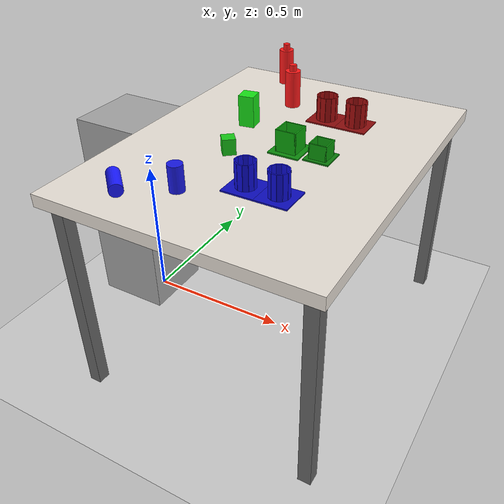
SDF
<?xml version="1.0" ?>
<sdf version="1.6">
  <world name="pick_reorient_world">

    <physics type="ode">
      <max_step_size>0.002</max_step_size>
      <real_time_factor>0.5</real_time_factor>
      <real_time_update_rate>250</real_time_update_rate>
    </physics>

    <plugin name="gazebo_grasp_fix" filename="libgazebo_grasp_fix.so">
      <robot_model>ur5</robot_model>

      <robot_link>wrist_3_link</robot_link>
      <search_radius>0.25</search_radius>
    </plugin>

    <include><uri>model://sun</uri></include>
    <include><uri>model://ground_plane</uri></include>

    <model name="robot_pedestal">
      <static>true</static>
      <pose>-0.05 0.0 0.0 0 0 0</pose>
      <link name="link">
        <collision name="col">
          <pose>0 0 0.35 0 0 0</pose>
          <geometry><box><size>0.25 0.25 0.70</size></box></geometry>
        </collision>
        <visual name="vis">
          <pose>0 0 0.35 0 0 0</pose>
          <geometry><box><size>0.25 0.25 0.70</size></box></geometry>
          <material>
            <ambient>0.55 0.55 0.55 1</ambient>
            <diffuse>0.65 0.65 0.65 1</diffuse>
            <specular>0.3 0.3 0.3 1</specular>
          </material>
        </visual>
      </link>
    </model>

    <model name="table">
      <static>true</static>
      <pose>0.5 0 0.0 0 0 0</pose>
      <link name="link">
        <collision name="top">
          <pose>0 0 0.69 0 0 0</pose>
          <geometry><box><size>0.85 1.10 0.04</size></box></geometry>
        </collision>
        <visual name="top_visual">
          <pose>0 0 0.69 0 0 0</pose>
          <geometry><box><size>0.85 1.10 0.04</size></box></geometry>
          <material>
            <ambient>0.85 0.82 0.78 1</ambient>
            <diffuse>0.92 0.89 0.85 1</diffuse>
            <specular>0.1 0.1 0.1 1</specular>
          </material>
        </visual>
        <!-- 4 legs -->
        <collision name="l1"><pose>0.38 0.50 0.335 0 0 0</pose><geometry><box><size>0.04 0.04 0.67</size></box></geometry></collision>
        <visual name="l1v"><pose>0.38 0.50 0.335 0 0 0</pose><geometry><box><size>0.04 0.04 0.67</size></box></geometry><material><ambient>0.4 0.4 0.4 1</ambient></material></visual>
        <collision name="l2"><pose>0.38 -0.50 0.335 0 0 0</pose><geometry><box><size>0.04 0.04 0.67</size></box></geometry></collision>
        <visual name="l2v"><pose>0.38 -0.50 0.335 0 0 0</pose><geometry><box><size>0.04 0.04 0.67</size></box></geometry><material><ambient>0.4 0.4 0.4 1</ambient></material></visual>
        <collision name="l3"><pose>-0.38 0.50 0.335 0 0 0</pose><geometry><box><size>0.04 0.04 0.67</size></box></geometry></collision>
        <visual name="l3v"><pose>-0.38 0.50 0.335 0 0 0</pose><geometry><box><size>0.04 0.04 0.67</size></box></geometry><material><ambient>0.4 0.4 0.4 1</ambient></material></visual>
        <collision name="l4"><pose>-0.38 -0.50 0.335 0 0 0</pose><geometry><box><size>0.04 0.04 0.67</size></box></geometry></collision>
        <visual name="l4v"><pose>-0.38 -0.50 0.335 0 0 0</pose><geometry><box><size>0.04 0.04 0.67</size></box></geometry><material><ambient>0.4 0.4 0.4 1</ambient></material></visual>
      </link>
    </model>

    <model name="target_red_1">
      <static>true</static>
      <pose>0.55 0.25 0.712 0 0 0</pose>
      <link name="link">

        <visual name="base">
          <geometry><box><size>0.10 0.10 0.005</size></box></geometry>
          <material><ambient>0.45 0.04 0.04 1</ambient><diffuse>0.55 0.05 0.05 1</diffuse></material>
        </visual>
        <collision name="base_col">
          <geometry><box><size>0.10 0.10 0.005</size></box></geometry>
        </collision>

        <visual name="w0"><pose>0.03100 0.00000 0.040 0 0 1.57080</pose><geometry><box><size>0.01632 0.004 0.08</size></box></geometry><material><ambient>0.65 0.05 0.05 1</ambient><diffuse>0.65 0.05 0.05 1</diffuse></material></visual>
        <collision name="w0c"><pose>0.03100 0.00000 0.040 0 0 1.57080</pose><geometry><box><size>0.01632 0.004 0.08</size></box></geometry></collision>

        <visual name="w1"><pose>0.02685 0.01550 0.040 0 0 2.09440</pose><geometry><box><size>0.01632 0.004 0.08</size></box></geometry><material><ambient>0.65 0.05 0.05 1</ambient><diffuse>0.65 0.05 0.05 1</diffuse></material></visual>
        <collision name="w1c"><pose>0.02685 0.01550 0.040 0 0 2.09440</pose><geometry><box><size>0.01632 0.004 0.08</size></box></geometry></collision>

        <visual name="w2"><pose>0.01550 0.02685 0.040 0 0 2.61799</pose><geometry><box><size>0.01632 0.004 0.08</size></box></geometry><material><ambient>0.65 0.05 0.05 1</ambient><diffuse>0.65 0.05 0.05 1</diffuse></material></visual>
        <collision name="w2c"><pose>0.01550 0.02685 0.040 0 0 2.61799</pose><geometry><box><size>0.01632 0.004 0.08</size></box></geometry></collision>

        <visual name="w3"><pose>0.00000 0.03100 0.040 0 0 3.14159</pose><geometry><box><size>0.01632 0.004 0.08</size></box></geometry><material><ambient>0.65 0.05 0.05 1</ambient><diffuse>0.65 0.05 0.05 1</diffuse></material></visual>
        <collision name="w3c"><pose>0.00000 0.03100 0.040 0 0 3.14159</pose><geometry><box><size>0.01632 0.004 0.08</size></box></geometry></collision>

        <visual name="w4"><pose>-0.01550 0.02685 0.040 0 0 3.66519</pose><geometry><box><size>0.01632 0.004 0.08</size></box></geometry><material><ambient>0.65 0.05 0.05 1</ambient><diffuse>0.65 0.05 0.05 1</diffuse></material></visual>
        <collision name="w4c"><pose>-0.01550 0.02685 0.040 0 0 3.66519</pose><geometry><box><size>0.01632 0.004 0.08</size></box></geometry></collision>

        <visual name="w5"><pose>-0.02685 0.01550 0.040 0 0 4.18879</pose><geometry><box><size>0.01632 0.004 0.08</size></box></geometry><material><ambient>0.65 0.05 0.05 1</ambient><diffuse>0.65 0.05 0.05 1</diffuse></material></visual>
        <collision name="w5c"><pose>-0.02685 0.01550 0.040 0 0 4.18879</pose><geometry><box><size>0.01632 0.004 0.08</size></box></geometry></collision>

        <visual name="w6"><pose>-0.03100 0.00000 0.040 0 0 4.71239</pose><geometry><box><size>0.01632 0.004 0.08</size></box></geometry><material><ambient>0.65 0.05 0.05 1</ambient><diffuse>0.65 0.05 0.05 1</diffuse></material></visual>
        <collision name="w6c"><pose>-0.03100 0.00000 0.040 0 0 4.71239</pose><geometry><box><size>0.01632 0.004 0.08</size></box></geometry></collision>

        <visual name="w7"><pose>-0.02685 -0.01550 0.040 0 0 5.23599</pose><geometry><box><size>0.01632 0.004 0.08</size></box></geometry><material><ambient>0.65 0.05 0.05 1</ambient><diffuse>0.65 0.05 0.05 1</diffuse></material></visual>
        <collision name="w7c"><pose>-0.02685 -0.01550 0.040 0 0 5.23599</pose><geometry><box><size>0.01632 0.004 0.08</size></box></geometry></collision>

        <visual name="w8"><pose>-0.01550 -0.02685 0.040 0 0 5.75959</pose><geometry><box><size>0.01632 0.004 0.08</size></box></geometry><material><ambient>0.65 0.05 0.05 1</ambient><diffuse>0.65 0.05 0.05 1</diffuse></material></visual>
        <collision name="w8c"><pose>-0.01550 -0.02685 0.040 0 0 5.75959</pose><geometry><box><size>0.01632 0.004 0.08</size></box></geometry></collision>

        <visual name="w9"><pose>0.00000 -0.03100 0.040 0 0 6.28319</pose><geometry><box><size>0.01632 0.004 0.08</size></box></geometry><material><ambient>0.65 0.05 0.05 1</ambient><diffuse>0.65 0.05 0.05 1</diffuse></material></visual>
        <collision name="w9c"><pose>0.00000 -0.03100 0.040 0 0 6.28319</pose><geometry><box><size>0.01632 0.004 0.08</size></box></geometry></collision>

        <visual name="w10"><pose>0.01550 -0.02685 0.040 0 0 6.80678</pose><geometry><box><size>0.01632 0.004 0.08</size></box></geometry><material><ambient>0.65 0.05 0.05 1</ambient><diffuse>0.65 0.05 0.05 1</diffuse></material></visual>
        <collision name="w10c"><pose>0.01550 -0.02685 0.040 0 0 6.80678</pose><geometry><box><size>0.01632 0.004 0.08</size></box></geometry></collision>

        <visual name="w11"><pose>0.02685 -0.01550 0.040 0 0 7.33038</pose><geometry><box><size>0.01632 0.004 0.08</size></box></geometry><material><ambient>0.65 0.05 0.05 1</ambient><diffuse>0.65 0.05 0.05 1</diffuse></material></visual>
        <collision name="w11c"><pose>0.02685 -0.01550 0.040 0 0 7.33038</pose><geometry><box><size>0.01632 0.004 0.08</size></box></geometry></collision>

      </link>
    </model>

    <model name="target_red_2">
      <static>true</static>
      <pose>0.65 0.25 0.712 0 0 0</pose>
      <link name="link">

        <visual name="base">
          <geometry><box><size>0.10 0.10 0.005</size></box></geometry>
          <material><ambient>0.45 0.04 0.04 1</ambient><diffuse>0.55 0.05 0.05 1</diffuse></material>
        </visual>
        <collision name="base_col">
          <geometry><box><size>0.10 0.10 0.005</size></box></geometry>
        </collision>

        <visual name="w0"><pose>0.03100 0.00000 0.040 0 0 1.57080</pose><geometry><box><size>0.01632 0.004 0.08</size></box></geometry><material><ambient>0.65 0.05 0.05 1</ambient><diffuse>0.65 0.05 0.05 1</diffuse></material></visual>
        <collision name="w0c"><pose>0.03100 0.00000 0.040 0 0 1.57080</pose><geometry><box><size>0.01632 0.004 0.08</size></box></geometry></collision>

        <visual name="w1"><pose>0.02685 0.01550 0.040 0 0 2.09440</pose><geometry><box><size>0.01632 0.004 0.08</size></box></geometry><material><ambient>0.65 0.05 0.05 1</ambient><diffuse>0.65 0.05 0.05 1</diffuse></material></visual>
        <collision name="w1c"><pose>0.02685 0.01550 0.040 0 0 2.09440</pose><geometry><box><size>0.01632 0.004 0.08</size></box></geometry></collision>

        <visual name="w2"><pose>0.01550 0.02685 0.040 0 0 2.61799</pose><geometry><box><size>0.01632 0.004 0.08</size></box></geometry><material><ambient>0.65 0.05 0.05 1</ambient><diffuse>0.65 0.05 0.05 1</diffuse></material></visual>
        <collision name="w2c"><pose>0.01550 0.02685 0.040 0 0 2.61799</pose><geometry><box><size>0.01632 0.004 0.08</size></box></geometry></collision>

        <visual name="w3"><pose>0.00000 0.03100 0.040 0 0 3.14159</pose><geometry><box><size>0.01632 0.004 0.08</size></box></geometry><material><ambient>0.65 0.05 0.05 1</ambient><diffuse>0.65 0.05 0.05 1</diffuse></material></visual>
        <collision name="w3c"><pose>0.00000 0.03100 0.040 0 0 3.14159</pose><geometry><box><size>0.01632 0.004 0.08</size></box></geometry></collision>

        <visual name="w4"><pose>-0.01550 0.02685 0.040 0 0 3.66519</pose><geometry><box><size>0.01632 0.004 0.08</size></box></geometry><material><ambient>0.65 0.05 0.05 1</ambient><diffuse>0.65 0.05 0.05 1</diffuse></material></visual>
        <collision name="w4c"><pose>-0.01550 0.02685 0.040 0 0 3.66519</pose><geometry><box><size>0.01632 0.004 0.08</size></box></geometry></collision>

        <visual name="w5"><pose>-0.02685 0.01550 0.040 0 0 4.18879</pose><geometry><box><size>0.01632 0.004 0.08</size></box></geometry><material><ambient>0.65 0.05 0.05 1</ambient><diffuse>0.65 0.05 0.05 1</diffuse></material></visual>
        <collision name="w5c"><pose>-0.02685 0.01550 0.040 0 0 4.18879</pose><geometry><box><size>0.01632 0.004 0.08</size></box></geometry></collision>

        <visual name="w6"><pose>-0.03100 0.00000 0.040 0 0 4.71239</pose><geometry><box><size>0.01632 0.004 0.08</size></box></geometry><material><ambient>0.65 0.05 0.05 1</ambient><diffuse>0.65 0.05 0.05 1</diffuse></material></visual>
        <collision name="w6c"><pose>-0.03100 0.00000 0.040 0 0 4.71239</pose><geometry><box><size>0.01632 0.004 0.08</size></box></geometry></collision>

        <visual name="w7"><pose>-0.02685 -0.01550 0.040 0 0 5.23599</pose><geometry><box><size>0.01632 0.004 0.08</size></box></geometry><material><ambient>0.65 0.05 0.05 1</ambient><diffuse>0.65 0.05 0.05 1</diffuse></material></visual>
        <collision name="w7c"><pose>-0.02685 -0.01550 0.040 0 0 5.23599</pose><geometry><box><size>0.01632 0.004 0.08</size></box></geometry></collision>

        <visual name="w8"><pose>-0.01550 -0.02685 0.040 0 0 5.75959</pose><geometry><box><size>0.01632 0.004 0.08</size></box></geometry><material><ambient>0.65 0.05 0.05 1</ambient><diffuse>0.65 0.05 0.05 1</diffuse></material></visual>
        <collision name="w8c"><pose>-0.01550 -0.02685 0.040 0 0 5.75959</pose><geometry><box><size>0.01632 0.004 0.08</size></box></geometry></collision>

        <visual name="w9"><pose>0.00000 -0.03100 0.040 0 0 6.28319</pose><geometry><box><size>0.01632 0.004 0.08</size></box></geometry><material><ambient>0.65 0.05 0.05 1</ambient><diffuse>0.65 0.05 0.05 1</diffuse></material></visual>
        <collision name="w9c"><pose>0.00000 -0.03100 0.040 0 0 6.28319</pose><geometry><box><size>0.01632 0.004 0.08</size></box></geometry></collision>

        <visual name="w10"><pose>0.01550 -0.02685 0.040 0 0 6.80678</pose><geometry><box><size>0.01632 0.004 0.08</size></box></geometry><material><ambient>0.65 0.05 0.05 1</ambient><diffuse>0.65 0.05 0.05 1</diffuse></material></visual>
        <collision name="w10c"><pose>0.01550 -0.02685 0.040 0 0 6.80678</pose><geometry><box><size>0.01632 0.004 0.08</size></box></geometry></collision>

        <visual name="w11"><pose>0.02685 -0.01550 0.040 0 0 7.33038</pose><geometry><box><size>0.01632 0.004 0.08</size></box></geometry><material><ambient>0.65 0.05 0.05 1</ambient><diffuse>0.65 0.05 0.05 1</diffuse></material></visual>
        <collision name="w11c"><pose>0.02685 -0.01550 0.040 0 0 7.33038</pose><geometry><box><size>0.01632 0.004 0.08</size></box></geometry></collision>

      </link>
    </model>

    <model name="target_green_1">
      <static>true</static>
      <pose>0.55 0.0 0.712 0 0 0</pose>
      <link name="link">
        <visual name="base"><pose>0 0 0 0 0 0</pose>
          <geometry><box><size>0.10 0.10 0.005</size></box></geometry>
          <material><ambient>0.04 0.45 0.04 1</ambient><diffuse>0.05 0.55 0.05 1</diffuse></material>
        </visual>
        <collision name="base_col"><pose>0 0 0 0 0 0</pose>
          <geometry><box><size>0.10 0.10 0.005</size></box></geometry>
        </collision>
        <visual name="wall_f"><pose>0 -0.031 0.035 0 0 0</pose><geometry><box><size>0.066 0.004 0.07</size></box></geometry>
          <material><ambient>0.04 0.55 0.04 1</ambient><diffuse>0.05 0.65 0.05 1</diffuse></material></visual>
        <collision name="wall_f_col"><pose>0 -0.031 0.035 0 0 0</pose><geometry><box><size>0.066 0.004 0.07</size></box></geometry></collision>
        <visual name="wall_b"><pose>0 0.031 0.035 0 0 0</pose><geometry><box><size>0.066 0.004 0.07</size></box></geometry>
          <material><ambient>0.04 0.55 0.04 1</ambient><diffuse>0.05 0.65 0.05 1</diffuse></material></visual>
        <collision name="wall_b_col"><pose>0 0.031 0.035 0 0 0</pose><geometry><box><size>0.066 0.004 0.07</size></box></geometry></collision>
        <visual name="wall_l"><pose>-0.031 0 0.035 0 0 0</pose><geometry><box><size>0.004 0.066 0.07</size></box></geometry>
          <material><ambient>0.04 0.55 0.04 1</ambient><diffuse>0.05 0.65 0.05 1</diffuse></material></visual>
        <collision name="wall_l_col"><pose>-0.031 0 0.035 0 0 0</pose><geometry><box><size>0.004 0.066 0.07</size></box></geometry></collision>
        <visual name="wall_r"><pose>0.031 0 0.035 0 0 0</pose><geometry><box><size>0.004 0.066 0.07</size></box></geometry>
          <material><ambient>0.04 0.55 0.04 1</ambient><diffuse>0.05 0.65 0.05 1</diffuse></material></visual>
        <collision name="wall_r_col"><pose>0.031 0 0.035 0 0 0</pose><geometry><box><size>0.004 0.066 0.07</size></box></geometry></collision>
      </link>
    </model>

    <model name="target_green_2">
      <static>true</static>
      <pose>0.65 0.0 0.712 0 0 0</pose>
      <link name="link">
        <visual name="base"><pose>0 0 0 0 0 0</pose>
          <geometry><box><size>0.08 0.08 0.005</size></box></geometry>
          <material><ambient>0.04 0.40 0.04 1</ambient><diffuse>0.05 0.50 0.05 1</diffuse></material>
        </visual>
        <collision name="base_col"><pose>0 0 0 0 0 0</pose>
          <geometry><box><size>0.08 0.08 0.005</size></box></geometry>
        </collision>
        <visual name="wall_f"><pose>0 -0.026 0.025 0 0 0</pose><geometry><box><size>0.056 0.004 0.05</size></box></geometry>
          <material><ambient>0.04 0.50 0.04 1</ambient><diffuse>0.05 0.60 0.05 1</diffuse></material></visual>
        <collision name="wall_f_col"><pose>0 -0.026 0.025 0 0 0</pose><geometry><box><size>0.056 0.004 0.05</size></box></geometry></collision>
        <visual name="wall_b"><pose>0 0.026 0.025 0 0 0</pose><geometry><box><size>0.056 0.004 0.05</size></box></geometry>
          <material><ambient>0.04 0.50 0.04 1</ambient><diffuse>0.05 0.60 0.05 1</diffuse></material></visual>
        <collision name="wall_b_col"><pose>0 0.026 0.025 0 0 0</pose><geometry><box><size>0.056 0.004 0.05</size></box></geometry></collision>
        <visual name="wall_l"><pose>-0.026 0 0.025 0 0 0</pose><geometry><box><size>0.004 0.056 0.05</size></box></geometry>
          <material><ambient>0.04 0.50 0.04 1</ambient><diffuse>0.05 0.60 0.05 1</diffuse></material></visual>
        <collision name="wall_l_col"><pose>-0.026 0 0.025 0 0 0</pose><geometry><box><size>0.004 0.056 0.05</size></box></geometry></collision>
        <visual name="wall_r"><pose>0.026 0 0.025 0 0 0</pose><geometry><box><size>0.004 0.056 0.05</size></box></geometry>
          <material><ambient>0.04 0.50 0.04 1</ambient><diffuse>0.05 0.60 0.05 1</diffuse></material></visual>
        <collision name="wall_r_col"><pose>0.026 0 0.025 0 0 0</pose><geometry><box><size>0.004 0.056 0.05</size></box></geometry></collision>
      </link>
    </model>

    <model name="target_blue_1">
      <static>true</static>
      <pose>0.55 -0.25 0.712 0 0 0</pose>
      <link name="link">

        <visual name="base">
          <geometry><box><size>0.10 0.10 0.005</size></box></geometry>
          <material>
            <ambient>0.05 0.05 0.65 1</ambient>
            <diffuse>0.05 0.05 0.75 1</diffuse>
          </material>
        </visual>
        <collision name="base_col">
          <geometry><box><size>0.10 0.10 0.005</size></box></geometry>
        </collision>

        <visual name="w0"><pose>0.02800 0.00000 0.040 0 0 1.57080</pose>
          <geometry><box><size>0.01463 0.004 0.08</size></box></geometry>
          <material><ambient>0.05 0.05 0.75 1</ambient><diffuse>0.05 0.05 0.85 1</diffuse></material>
        </visual>
        <collision name="w0c"><pose>0.02800 0.00000 0.040 0 0 1.57080</pose>
          <geometry><box><size>0.01463 0.004 0.08</size></box></geometry>
        </collision>

        <visual name="w1"><pose>0.02425 0.01400 0.040 0 0 2.09440</pose>
          <geometry><box><size>0.01463 0.004 0.08</size></box></geometry>
          <material><ambient>0.05 0.05 0.75 1</ambient><diffuse>0.05 0.05 0.85 1</diffuse></material>
        </visual>
        <collision name="w1c"><pose>0.02425 0.01400 0.040 0 0 2.09440</pose>
          <geometry><box><size>0.01463 0.004 0.08</size></box></geometry>
        </collision>

        <visual name="w2"><pose>0.01400 0.02425 0.040 0 0 2.61799</pose>
          <geometry><box><size>0.01463 0.004 0.08</size></box></geometry>
          <material><ambient>0.05 0.05 0.75 1</ambient><diffuse>0.05 0.05 0.85 1</diffuse></material>
        </visual>
        <collision name="w2c"><pose>0.01400 0.02425 0.040 0 0 2.61799</pose>
          <geometry><box><size>0.01463 0.004 0.08</size></box></geometry>
        </collision>

        <visual name="w3"><pose>0.00000 0.02800 0.040 0 0 3.14159</pose>
          <geometry><box><size>0.01463 0.004 0.08</size></box></geometry>
          <material><ambient>0.05 0.05 0.75 1</ambient><diffuse>0.05 0.05 0.85 1</diffuse></material>
        </visual>
        <collision name="w3c"><pose>0.00000 0.02800 0.040 0 0 3.14159</pose>
          <geometry><box><size>0.01463 0.004 0.08</size></box></geometry>
        </collision>

        <visual name="w4"><pose>-0.01400 0.02425 0.040 0 0 3.66519</pose>
          <geometry><box><size>0.01463 0.004 0.08</size></box></geometry>
          <material><ambient>0.05 0.05 0.75 1</ambient><diffuse>0.05 0.05 0.85 1</diffuse></material>
        </visual>
        <collision name="w4c"><pose>-0.01400 0.02425 0.040 0 0 3.66519</pose>
          <geometry><box><size>0.01463 0.004 0.08</size></box></geometry>
        </collision>

        <visual name="w5"><pose>-0.02425 0.01400 0.040 0 0 4.18879</pose>
          <geometry><box><size>0.01463 0.004 0.08</size></box></geometry>
          <material><ambient>0.05 0.05 0.75 1</ambient><diffuse>0.05 0.05 0.85 1</diffuse></material>
        </visual>
        <collision name="w5c"><pose>-0.02425 0.01400 0.040 0 0 4.18879</pose>
          <geometry><box><size>0.01463 0.004 0.08</size></box></geometry>
        </collision>

        <visual name="w6"><pose>-0.02800 0.00000 0.040 0 0 4.71239</pose>
          <geometry><box><size>0.01463 0.004 0.08</size></box></geometry>
          <material><ambient>0.05 0.05 0.75 1</ambient><diffuse>0.05 0.05 0.85 1</diffuse></material>
        </visual>
        <collision name="w6c"><pose>-0.02800 0.00000 0.040 0 0 4.71239</pose>
          <geometry><box><size>0.01463 0.004 0.08</size></box></geometry>
        </collision>

        <visual name="w7"><pose>-0.02425 -0.01400 0.040 0 0 5.23599</pose>
          <geometry><box><size>0.01463 0.004 0.08</size></box></geometry>
          <material><ambient>0.05 0.05 0.75 1</ambient><diffuse>0.05 0.05 0.85 1</diffuse></material>
        </visual>
        <collision name="w7c"><pose>-0.02425 -0.01400 0.040 0 0 5.23599</pose>
          <geometry><box><size>0.01463 0.004 0.08</size></box></geometry>
        </collision>

        <visual name="w8"><pose>-0.01400 -0.02425 0.040 0 0 5.75959</pose>
          <geometry><box><size>0.01463 0.004 0.08</size></box></geometry>
          <material><ambient>0.05 0.05 0.75 1</ambient><diffuse>0.05 0.05 0.85 1</diffuse></material>
        </visual>
        <collision name="w8c"><pose>-0.01400 -0.02425 0.040 0 0 5.75959</pose>
          <geometry><box><size>0.01463 0.004 0.08</size></box></geometry>
        </collision>

        <visual name="w9"><pose>0.00000 -0.02800 0.040 0 0 6.28319</pose>
          <geometry><box><size>0.01463 0.004 0.08</size></box></geometry>
          <material><ambient>0.05 0.05 0.75 1</ambient><diffuse>0.05 0.05 0.85 1</diffuse></material>
        </visual>
        <collision name="w9c"><pose>0.00000 -0.02800 0.040 0 0 6.28319</pose>
          <geometry><box><size>0.01463 0.004 0.08</size></box></geometry>
        </collision>

        <visual name="w10"><pose>0.01400 -0.02425 0.040 0 0 6.80678</pose>
          <geometry><box><size>0.01463 0.004 0.08</size></box></geometry>
          <material><ambient>0.05 0.05 0.75 1</ambient><diffuse>0.05 0.05 0.85 1</diffuse></material>
        </visual>
        <collision name="w10c"><pose>0.01400 -0.02425 0.040 0 0 6.80678</pose>
          <geometry><box><size>0.01463 0.004 0.08</size></box></geometry>
        </collision>

        <visual name="w11"><pose>0.02425 -0.01400 0.040 0 0 7.33038</pose>
          <geometry><box><size>0.01463 0.004 0.08</size></box></geometry>
          <material><ambient>0.05 0.05 0.75 1</ambient><diffuse>0.05 0.05 0.85 1</diffuse></material>
        </visual>
        <collision name="w11c"><pose>0.02425 -0.01400 0.040 0 0 7.33038</pose>
          <geometry><box><size>0.01463 0.004 0.08</size></box></geometry>
        </collision>

      </link>
    </model>

    <model name="target_blue_2">
      <static>true</static>
      <pose>0.65 -0.25 0.712 0 0 0</pose>
      <link name="link">

        <visual name="base">
          <geometry><box><size>0.10 0.10 0.005</size></box></geometry>
          <material>
            <ambient>0.05 0.05 0.65 1</ambient>
            <diffuse>0.05 0.05 0.75 1</diffuse>
          </material>
        </visual>
        <collision name="base_col">
          <geometry><box><size>0.10 0.10 0.005</size></box></geometry>
        </collision>

        <visual name="w0"><pose>0.02800 0.00000 0.040 0 0 1.57080</pose>
          <geometry><box><size>0.01463 0.004 0.08</size></box></geometry>
          <material><ambient>0.05 0.05 0.75 1</ambient><diffuse>0.05 0.05 0.85 1</diffuse></material>
        </visual>
        <collision name="w0c"><pose>0.02800 0.00000 0.040 0 0 1.57080</pose>
          <geometry><box><size>0.01463 0.004 0.08</size></box></geometry>
        </collision>

        <visual name="w1"><pose>0.02425 0.01400 0.040 0 0 2.09440</pose>
          <geometry><box><size>0.01463 0.004 0.08</size></box></geometry>
          <material><ambient>0.05 0.05 0.75 1</ambient><diffuse>0.05 0.05 0.85 1</diffuse></material>
        </visual>
        <collision name="w1c"><pose>0.02425 0.01400 0.040 0 0 2.09440</pose>
          <geometry><box><size>0.01463 0.004 0.08</size></box></geometry>
        </collision>

        <visual name="w2"><pose>0.01400 0.02425 0.040 0 0 2.61799</pose>
          <geometry><box><size>0.01463 0.004 0.08</size></box></geometry>
          <material><ambient>0.05 0.05 0.75 1</ambient><diffuse>0.05 0.05 0.85 1</diffuse></material>
        </visual>
        <collision name="w2c"><pose>0.01400 0.02425 0.040 0 0 2.61799</pose>
          <geometry><box><size>0.01463 0.004 0.08</size></box></geometry>
        </collision>

        <visual name="w3"><pose>0.00000 0.02800 0.040 0 0 3.14159</pose>
          <geometry><box><size>0.01463 0.004 0.08</size></box></geometry>
          <material><ambient>0.05 0.05 0.75 1</ambient><diffuse>0.05 0.05 0.85 1</diffuse></material>
        </visual>
        <collision name="w3c"><pose>0.00000 0.02800 0.040 0 0 3.14159</pose>
          <geometry><box><size>0.01463 0.004 0.08</size></box></geometry>
        </collision>

        <visual name="w4"><pose>-0.01400 0.02425 0.040 0 0 3.66519</pose>
          <geometry><box><size>0.01463 0.004 0.08</size></box></geometry>
          <material><ambient>0.05 0.05 0.75 1</ambient><diffuse>0.05 0.05 0.85 1</diffuse></material>
        </visual>
        <collision name="w4c"><pose>-0.01400 0.02425 0.040 0 0 3.66519</pose>
          <geometry><box><size>0.01463 0.004 0.08</size></box></geometry>
        </collision>

        <visual name="w5"><pose>-0.02425 0.01400 0.040 0 0 4.18879</pose>
          <geometry><box><size>0.01463 0.004 0.08</size></box></geometry>
          <material><ambient>0.05 0.05 0.75 1</ambient><diffuse>0.05 0.05 0.85 1</diffuse></material>
        </visual>
        <collision name="w5c"><pose>-0.02425 0.01400 0.040 0 0 4.18879</pose>
          <geometry><box><size>0.01463 0.004 0.08</size></box></geometry>
        </collision>

        <visual name="w6"><pose>-0.02800 0.00000 0.040 0 0 4.71239</pose>
          <geometry><box><size>0.01463 0.004 0.08</size></box></geometry>
          <material><ambient>0.05 0.05 0.75 1</ambient><diffuse>0.05 0.05 0.85 1</diffuse></material>
        </visual>
        <collision name="w6c"><pose>-0.02800 0.00000 0.040 0 0 4.71239</pose>
          <geometry><box><size>0.01463 0.004 0.08</size></box></geometry>
        </collision>

        <visual name="w7"><pose>-0.02425 -0.01400 0.040 0 0 5.23599</pose>
          <geometry><box><size>0.01463 0.004 0.08</size></box></geometry>
          <material><ambient>0.05 0.05 0.75 1</ambient><diffuse>0.05 0.05 0.85 1</diffuse></material>
        </visual>
        <collision name="w7c"><pose>-0.02425 -0.01400 0.040 0 0 5.23599</pose>
          <geometry><box><size>0.01463 0.004 0.08</size></box></geometry>
        </collision>

        <visual name="w8"><pose>-0.01400 -0.02425 0.040 0 0 5.75959</pose>
          <geometry><box><size>0.01463 0.004 0.08</size></box></geometry>
          <material><ambient>0.05 0.05 0.75 1</ambient><diffuse>0.05 0.05 0.85 1</diffuse></material>
        </visual>
        <collision name="w8c"><pose>-0.01400 -0.02425 0.040 0 0 5.75959</pose>
          <geometry><box><size>0.01463 0.004 0.08</size></box></geometry>
        </collision>

        <visual name="w9"><pose>0.00000 -0.02800 0.040 0 0 6.28319</pose>
          <geometry><box><size>0.01463 0.004 0.08</size></box></geometry>
          <material><ambient>0.05 0.05 0.75 1</ambient><diffuse>0.05 0.05 0.85 1</diffuse></material>
        </visual>
        <collision name="w9c"><pose>0.00000 -0.02800 0.040 0 0 6.28319</pose>
          <geometry><box><size>0.01463 0.004 0.08</size></box></geometry>
        </collision>

        <visual name="w10"><pose>0.01400 -0.02425 0.040 0 0 6.80678</pose>
          <geometry><box><size>0.01463 0.004 0.08</size></box></geometry>
          <material><ambient>0.05 0.05 0.75 1</ambient><diffuse>0.05 0.05 0.85 1</diffuse></material>
        </visual>
        <collision name="w10c"><pose>0.01400 -0.02425 0.040 0 0 6.80678</pose>
          <geometry><box><size>0.01463 0.004 0.08</size></box></geometry>
        </collision>

        <visual name="w11"><pose>0.02425 -0.01400 0.040 0 0 7.33038</pose>
          <geometry><box><size>0.01463 0.004 0.08</size></box></geometry>
          <material><ambient>0.05 0.05 0.75 1</ambient><diffuse>0.05 0.05 0.85 1</diffuse></material>
        </visual>
        <collision name="w11c"><pose>0.02425 -0.01400 0.040 0 0 7.33038</pose>
          <geometry><box><size>0.01463 0.004 0.08</size></box></geometry>
        </collision>

      </link>
    </model>

    <!-- Red bottle 1 (standing) -->
    <model name="red_bottle_1">
      <pose>0.28 0.48 0.77 0 0 0.2</pose>
      <link name="link">
        <inertial><mass>0.15</mass>
          <inertia><ixx>3e-5</ixx><iyy>3e-5</iyy><izz>1e-5</izz><ixy>0</ixy><ixz>0</ixz><iyz>0</iyz></inertia>
        </inertial>
        <collision name="body">
          <geometry><cylinder><radius>0.025</radius><length>0.12</length></cylinder></geometry>
          <surface><friction><ode><mu>5.0</mu><mu2>5.0</mu2></ode></friction></surface>
        </collision>
        <visual name="body">
          <geometry><cylinder><radius>0.025</radius><length>0.12</length></cylinder></geometry>
          <material><ambient>0.8 0.05 0.05 1</ambient><diffuse>1.0 0.1 0.1 1</diffuse><specular>0.4 0.1 0.1 1</specular></material>
        </visual>
        <collision name="neck"><pose>0 0 0.07 0 0 0</pose>
          <geometry><cylinder><radius>0.012</radius><length>0.02</length></cylinder></geometry>
        </collision>
        <visual name="neck"><pose>0 0 0.07 0 0 0</pose>
          <geometry><cylinder><radius>0.012</radius><length>0.02</length></cylinder></geometry>
          <material><ambient>0.8 0.05 0.05 1</ambient><diffuse>1.0 0.1 0.1 1</diffuse></material>
        </visual>
      </link>
    </model>

    <!-- Red bottle 2 (standing up) -->
    <model name="red_bottle_2">
      <pose>0.40 0.30 0.77 0 0 0.2</pose>
      <link name="link">
        <inertial><mass>0.25</mass>
          <inertia><ixx>3e-5</ixx><iyy>3e-5</iyy><izz>1e-5</izz><ixy>0</ixy><ixz>0</ixz><iyz>0</iyz></inertia>
        </inertial>
        <collision name="body">
          <geometry><cylinder><radius>0.025</radius><length>0.12</length></cylinder></geometry>
          <surface><friction><ode><mu>5.0</mu><mu2>5.0</mu2></ode></friction></surface>
        </collision>
        <visual name="body">
          <geometry><cylinder><radius>0.025</radius><length>0.12</length></cylinder></geometry>
          <material><ambient>0.8 0.05 0.05 1</ambient><diffuse>1.0 0.1 0.1 1</diffuse><specular>0.4 0.1 0.1 1</specular></material>
        </visual>
        <collision name="neck"><pose>0 0 0.07 0 0 0</pose>
          <geometry><cylinder><radius>0.012</radius><length>0.02</length></cylinder></geometry>
        </collision>
        <visual name="neck"><pose>0 0 0.07 0 0 0</pose>
          <geometry><cylinder><radius>0.012</radius><length>0.02</length></cylinder></geometry>
          <material><ambient>0.8 0.05 0.05 1</ambient><diffuse>1.0 0.1 0.1 1</diffuse></material>
        </visual>
      </link>
    </model>

    <!-- Green box 1 (standing) -->
    <model name="green_box_1">
      <pose>0.35 0.10 0.76 0 0 0.15</pose>
      <link name="link">
        <inertial><mass>0.25</mass>
          <inertia><ixx>2e-5</ixx><iyy>2e-5</iyy><izz>1e-5</izz><ixy>0</ixy><ixz>0</ixz><iyz>0</iyz></inertia>
        </inertial>
        <collision name="col">
          <geometry><box><size>0.05 0.05 0.10</size></box></geometry>
          <surface><friction><ode><mu>5.0</mu><mu2>5.0</mu2></ode></friction></surface>
        </collision>
        <visual name="vis">
          <geometry><box><size>0.05 0.05 0.10</size></box></geometry>
          <material><ambient>0.05 0.7 0.05 1</ambient><diffuse>0.1 0.9 0.1 1</diffuse><specular>0.1 0.3 0.1 1</specular></material>
        </visual>
      </link>
    </model>

    <!-- Green box 2 (small, lying flat) -->
    <model name="green_box_2">
      <pose>0.40 -0.10 0.73 0 0 0.7</pose>
      <link name="link">
        <inertial><mass>0.20</mass>
          <inertia><ixx>1e-5</ixx><iyy>1e-5</iyy><izz>5e-6</izz><ixy>0</ixy><ixz>0</ixz><iyz>0</iyz></inertia>
        </inertial>
        <collision name="col">
          <geometry><box><size>0.04 0.04 0.06</size></box></geometry>
          <surface><friction><ode><mu>5.0</mu><mu2>5.0</mu2></ode></friction></surface>
        </collision>
        <visual name="vis">
          <geometry><box><size>0.04 0.04 0.06</size></box></geometry>
          <material><ambient>0.05 0.6 0.05 1</ambient><diffuse>0.1 0.8 0.1 1</diffuse></material>
        </visual>
      </link>
    </model>

    <!-- Blue cylinder 1 (lying on side) -->
    <model name="blue_cylinder_1">
      <pose>0.25 -0.42 0.73 1.5708 -0.3 0.8</pose>
      <link name="link">
        <inertial><mass>0.20</mass>
          <inertia><ixx>2e-5</ixx><iyy>2e-5</iyy><izz>1e-5</izz><ixy>0</ixy><ixz>0</ixz><iyz>0</iyz></inertia>
        </inertial>
        <collision name="col">
          <geometry><cylinder><radius>0.02</radius><length>0.10</length></cylinder></geometry>
          <surface><friction><ode><mu>5.0</mu><mu2>5.0</mu2></ode></friction></surface>
        </collision>
        <visual name="vis">
          <geometry><cylinder><radius>0.02</radius><length>0.10</length></cylinder></geometry>
          <material><ambient>0.05 0.05 0.8 1</ambient><diffuse>0.1 0.1 1.0 1</diffuse><specular>0.1 0.1 0.4 1</specular></material>
        </visual>
      </link>
    </model>

    <!-- Blue cylinder 2 (standing) -->
    <model name="blue_cylinder_2">
      <pose>0.40 -0.35 0.75 0 0 0</pose>
      <link name="link">
        <inertial><mass>0.20</mass>
          <inertia><ixx>2e-5</ixx><iyy>2e-5</iyy><izz>1e-5</izz><ixy>0</ixy><ixz>0</ixz><iyz>0</iyz></inertia>
        </inertial>
        <collision name="col">
          <geometry><cylinder><radius>0.022</radius><length>0.08</length></cylinder></geometry>
          <surface><friction><ode><mu>5.0</mu><mu2>5.0</mu2></ode></friction></surface>
        </collision>
        <visual name="vis">
          <geometry><cylinder><radius>0.022</radius><length>0.08</length></cylinder></geometry>
          <material><ambient>0.05 0.05 0.7 1</ambient><diffuse>0.1 0.1 0.9 1</diffuse><specular>0.1 0.1 0.3 1</specular></material>
        </visual>
      </link>
    </model>

  </world>
</sdf>
